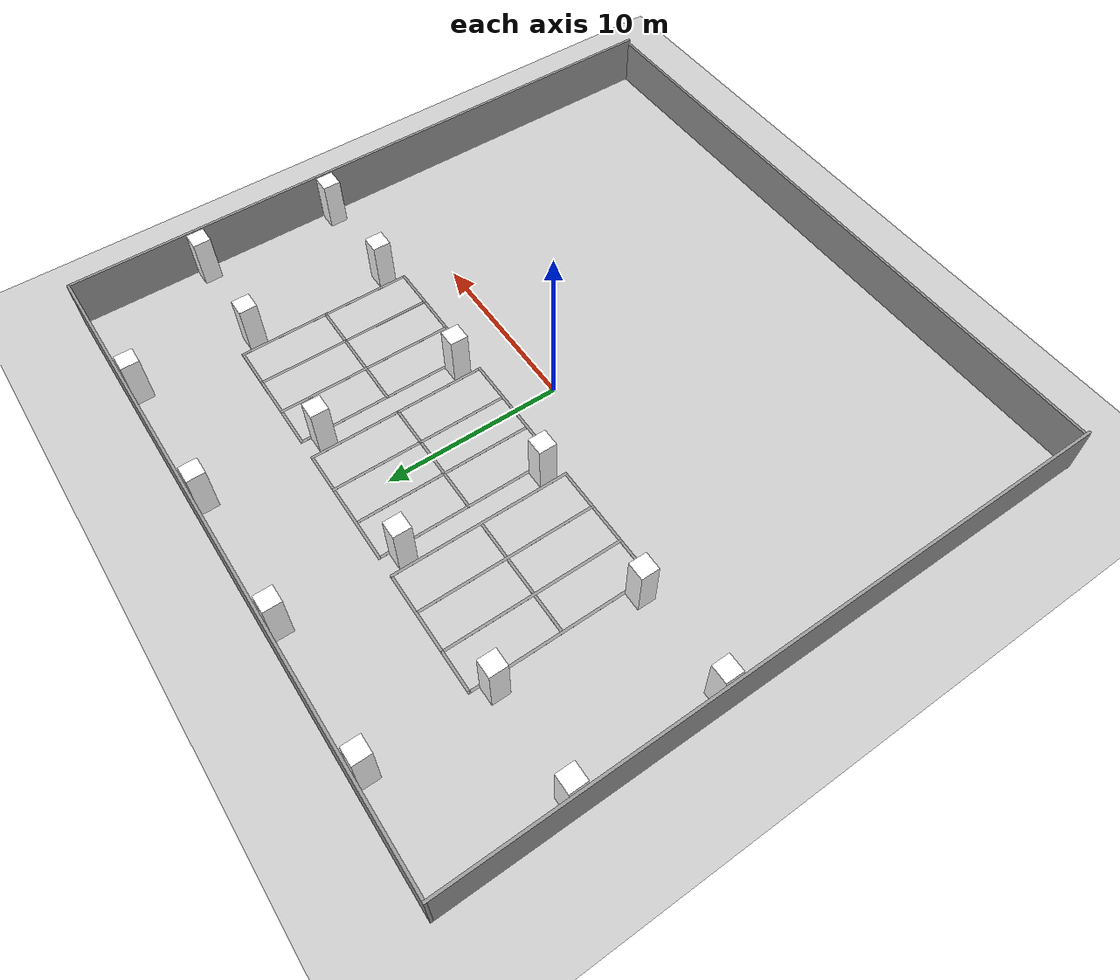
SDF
<sdf version="1.5">
 <world name="default">
  <model name="ground_plane">
   <static>true</static>
   <link name="ground_link">
    <collision name="ground_collision">
     <geometry><plane><normal>0 0 1</normal><size>100 100</size></plane></geometry>
     <surface><friction><ode><mu>100</mu><mu2>50</mu2></ode></friction></surface>
    </collision>
    <visual name="visual">
     <cast_shadows>false</cast_shadows>
     <geometry><plane><normal>0 0 1</normal><size>100 100</size></plane></geometry>
     <material>
      <script><uri>file://media/materials/scripts/gazebo.material</uri><name>Gazebo/Grey</name></script>
     </material>
    </visual>
   </link>
  </model>
  <model name="column1">
   <pose>12.075 11.45 1.5 0 -0 0</pose>
   <link name="link">
    <collision name="collision"><geometry><box><size>1 1 3</size></box></geometry></collision>
    <visual name="visual">
     <geometry><box><size>1 1 3</size></box></geometry>
     <material>
      <script>
       <uri>model://materials/scripts</uri>
       <uri>model://materials/textures</uri>
       <name>column/parking</name>
      </script>
      <ambient>1 1 1 1</ambient>
      <diffuse>1 1 1 1</diffuse>
      <specular>0 0 0 1</specular>
      <emissive>1 1 1 0</emissive>
      <shader type="vertex"><normal_map>__default__</normal_map></shader>
     </material>
    </visual>
   </link>
   <static>1</static>
  </model>
  <model name="column2">
   <pose>4.025 11.45 1.5 0 -0 0</pose>
   <link name="link">
    <collision name="collision"><geometry><box><size>1 1 3</size></box></geometry></collision>
    <visual name="visual">
     <geometry><box><size>1 1 3</size></box></geometry>
     <material>
      <script>
       <uri>model://materials/scripts</uri>
       <uri>model://materials/textures</uri>
       <name>column/parking</name>
      </script>
      <ambient>1 1 1 1</ambient>
      <diffuse>1 1 1 1</diffuse>
      <specular>0 0 0 1</specular>
      <emissive>1 1 1 0</emissive>
      <shader type="vertex"><normal_map>__default__</normal_map></shader>
     </material>
    </visual>
   </link>
   <static>1</static>
  </model>
  <model name="column3">
   <pose>-4.025 11.45 1.5 0 -0 0</pose>
   <link name="link">
    <collision name="collision"><geometry><box><size>1 1 3</size></box></geometry></collision>
    <visual name="visual">
     <geometry><box><size>1 1 3</size></box></geometry>
     <material>
      <script>
       <uri>model://materials/scripts</uri>
       <uri>model://materials/textures</uri>
       <name>column/parking</name>
      </script>
      <ambient>1 1 1 1</ambient>
      <diffuse>1 1 1 1</diffuse>
      <specular>0 0 0 1</specular>
      <emissive>1 1 1 0</emissive>
      <shader type="vertex"><normal_map>__default__</normal_map></shader>
     </material>
    </visual>
   </link>
   <static>1</static>
  </model>
  <model name="column4">
   <pose>-12.075 11.45 1.5 0 -0 0</pose>
   <link name="link">
    <collision name="collision"><geometry><box><size>1 1 3</size></box></geometry></collision>
    <visual name="visual">
     <geometry><box><size>1 1 3</size></box></geometry>
     <material>
      <script>
       <uri>model://materials/scripts</uri>
       <uri>model://materials/textures</uri>
       <name>column/parking</name>
      </script>
      <ambient>1 1 1 1</ambient>
      <diffuse>1 1 1 1</diffuse>
      <specular>0 0 0 1</specular>
      <emissive>1 1 1 0</emissive>
      <shader type="vertex"><normal_map>__default__</normal_map></shader>
     </material>
    </visual>
   </link>
   <static>1</static>
  </model>
  <model name="column5">
   <pose>12.075 3.45 1.5 0 -0 0</pose>
   <link name="link">
    <collision name="collision"><geometry><box><size>1 1 3</size></box></geometry></collision>
    <visual name="visual">
     <geometry><box><size>1 1 3</size></box></geometry>
     <material>
      <script>
       <uri>model://materials/scripts</uri>
       <uri>model://materials/textures</uri>
       <name>column/parking</name>
      </script>
      <ambient>1 1 1 1</ambient>
      <diffuse>1 1 1 1</diffuse>
      <specular>0 0 0 1</specular>
      <emissive>1 1 1 0</emissive>
      <shader type="vertex"><normal_map>__default__</normal_map></shader>
     </material>
    </visual>
   </link>
   <static>1</static>
  </model>
  <model name="column6">
   <pose>4.025 3.45 1.5 0 -0 0</pose>
   <link name="link">
    <collision name="collision"><geometry><box><size>1 1 3</size></box></geometry></collision>
    <visual name="visual">
     <geometry><box><size>1 1 3</size></box></geometry>
     <material>
      <script>
       <uri>model://materials/scripts</uri>
       <uri>model://materials/textures</uri>
       <name>column/parking</name>
      </script>
      <ambient>1 1 1 1</ambient>
      <diffuse>1 1 1 1</diffuse>
      <specular>0 0 0 1</specular>
      <emissive>1 1 1 0</emissive>
      <shader type="vertex"><normal_map>__default__</normal_map></shader>
     </material>
    </visual>
   </link>
   <static>1</static>
  </model>
  <model name="column7">
   <pose>-4.025 3.45 1.5 0 -0 0</pose>
   <link name="link">
    <collision name="collision"><geometry><box><size>1 1 3</size></box></geometry></collision>
    <visual name="visual">
     <geometry><box><size>1 1 3</size></box></geometry>
     <material>
      <script>
       <uri>model://materials/scripts</uri>
       <uri>model://materials/textures</uri>
       <name>column/parking</name>
      </script>
      <ambient>1 1 1 1</ambient>
      <diffuse>1 1 1 1</diffuse>
      <specular>0 0 0 1</specular>
      <emissive>1 1 1 0</emissive>
      <shader type="vertex"><normal_map>__default__</normal_map></shader>
     </material>
    </visual>
   </link>
   <static>1</static>
  </model>
  <model name="column8">
   <pose>-12.075 3.45 1.5 0 -0 0</pose>
   <link name="link">
    <collision name="collision"><geometry><box><size>1 1 3</size></box></geometry></collision>
    <visual name="visual">
     <geometry><box><size>1 1 3</size></box></geometry>
     <material>
      <script>
       <uri>model://materials/scripts</uri>
       <uri>model://materials/textures</uri>
       <name>column/parking</name>
      </script>
      <ambient>1 1 1 1</ambient>
      <diffuse>1 1 1 1</diffuse>
      <specular>0 0 0 1</specular>
      <emissive>1 1 1 0</emissive>
      <shader type="vertex"><normal_map>__default__</normal_map></shader>
     </material>
    </visual>
   </link>
   <static>1</static>
  </model>
  <model name="column_s1">
   <pose>17.875 3.45 1.5 0 -0 0</pose>
   <link name="link">
    <collision name="collision"><geometry><box><size>1 1 3</size></box></geometry></collision>
    <visual name="visual">
     <geometry><box><size>1 1 3</size></box></geometry>
     <material>
      <script>
       <uri>model://materials/scripts</uri>
       <uri>model://materials/textures</uri>
       <name>column/parking</name>
      </script>
      <ambient>1 1 1 1</ambient>
      <diffuse>1 1 1 1</diffuse>
      <specular>0 0 0 1</specular>
      <emissive>1 1 1 0</emissive>
      <shader type="vertex"><normal_map>__default__</normal_map></shader>
     </material>
    </visual>
   </link>
   <static>1</static>
  </model>
  <model name="column_s2">
   <pose>17.875 11.45 1.5 0 -0 0</pose>
   <link name="link">
    <collision name="collision"><geometry><box><size>1 1 3</size></box></geometry></collision>
    <visual name="visual">
     <geometry><box><size>1 1 3</size></box></geometry>
     <material>
      <script>
       <uri>model://materials/scripts</uri>
       <uri>model://materials/textures</uri>
       <name>column/parking</name>
      </script>
      <ambient>1 1 1 1</ambient>
      <diffuse>1 1 1 1</diffuse>
      <specular>0 0 0 1</specular>
      <emissive>1 1 1 0</emissive>
      <shader type="vertex"><normal_map>__default__</normal_map></shader>
     </material>
    </visual>
   </link>
   <static>1</static>
  </model>
  <model name="column_s3">
   <pose>12.075 17.95 1.5 0 -0 0</pose>
   <link name="link">
    <collision name="collision"><geometry><box><size>1 1 3</size></box></geometry></collision>
    <visual name="visual">
     <geometry><box><size>1 1 3</size></box></geometry>
     <material>
      <script>
       <uri>model://materials/scripts</uri>
       <uri>model://materials/textures</uri>
       <name>column/parking</name>
      </script>
      <ambient>1 1 1 1</ambient>
      <diffuse>1 1 1 1</diffuse>
      <specular>0 0 0 1</specular>
      <emissive>1 1 1 0</emissive>
      <shader type="vertex"><normal_map>__default__</normal_map></shader>
     </material>
    </visual>
   </link>
   <static>1</static>
  </model>
  <model name="column_s4">
   <pose>4.025 17.95 1.5 0 -0 0</pose>
   <link name="link">
    <collision name="collision"><geometry><box><size>1 1 3</size></box></geometry></collision>
    <visual name="visual">
     <geometry><box><size>1 1 3</size></box></geometry>
     <material>
      <script>
       <uri>model://materials/scripts</uri>
       <uri>model://materials/textures</uri>
       <name>column/parking</name>
      </script>
      <ambient>1 1 1 1</ambient>
      <diffuse>1 1 1 1</diffuse>
      <specular>0 0 0 1</specular>
      <emissive>1 1 1 0</emissive>
      <shader type="vertex"><normal_map>__default__</normal_map></shader>
     </material>
    </visual>
   </link>
   <static>1</static>
  </model>
  <model name="column_s5">
   <pose>-4.025 17.95 1.5 0 -0 0</pose>
   <link name="link">
    <collision name="collision"><geometry><box><size>1 1 3</size></box></geometry></collision>
    <visual name="visual">
     <geometry><box><size>1 1 3</size></box></geometry>
     <material>
      <script>
       <uri>model://materials/scripts</uri>
       <uri>model://materials/textures</uri>
       <name>column/parking</name>
      </script>
      <ambient>1 1 1 1</ambient>
      <diffuse>1 1 1 1</diffuse>
      <specular>0 0 0 1</specular>
      <emissive>1 1 1 0</emissive>
      <shader type="vertex"><normal_map>__default__</normal_map></shader>
     </material>
    </visual>
   </link>
   <static>1</static>
  </model>
  <model name="column_s6">
   <pose>-12.075 17.95 1.5 0 -0 0</pose>
   <link name="link">
    <collision name="collision"><geometry><box><size>1 1 3</size></box></geometry></collision>
    <visual name="visual">
     <geometry><box><size>1 1 3</size></box></geometry>
     <material>
      <script>
       <uri>model://materials/scripts</uri>
       <uri>model://materials/textures</uri>
       <name>column/parking</name>
      </script>
      <ambient>1 1 1 1</ambient>
      <diffuse>1 1 1 1</diffuse>
      <specular>0 0 0 1</specular>
      <emissive>1 1 1 0</emissive>
      <shader type="vertex"><normal_map>__default__</normal_map></shader>
     </material>
    </visual>
   </link>
   <static>1</static>
  </model>
  <model name="column_s7">
   <pose>-17.875 11.45 1.5 0 -0 0</pose>
   <link name="link">
    <collision name="collision"><geometry><box><size>1 1 3</size></box></geometry></collision>
    <visual name="visual">
     <geometry><box><size>1 1 3</size></box></geometry>
     <material>
      <script>
       <uri>model://materials/scripts</uri>
       <uri>model://materials/textures</uri>
       <name>column/parking</name>
      </script>
      <ambient>1 1 1 1</ambient>
      <diffuse>1 1 1 1</diffuse>
      <specular>0 0 0 1</specular>
      <emissive>1 1 1 0</emissive>
      <shader type="vertex"><normal_map>__default__</normal_map></shader>
     </material>
    </visual>
   </link>
   <static>1</static>
  </model>
  <model name="column_s8">
   <pose>-17.875 3.45 1.5 0 -0 0</pose>
   <link name="link">
    <collision name="collision"><geometry><box><size>1 1 3</size></box></geometry></collision>
    <visual name="visual">
     <geometry><box><size>1 1 3</size></box></geometry>
     <material>
      <script>
       <uri>model://materials/scripts</uri>
       <uri>model://materials/textures</uri>
       <name>column/parking</name>
      </script>
      <ambient>1 1 1 1</ambient>
      <diffuse>1 1 1 1</diffuse>
      <specular>0 0 0 1</specular>
      <emissive>1 1 1 0</emissive>
      <shader type="vertex"><normal_map>__default__</normal_map></shader>
     </material>
    </visual>
   </link>
   <static>1</static>
  </model>
  <model name="wall_outer">
   <link name="Wall_0">
    <collision name="Wall_0_Collision">
     <geometry><box><size>37.35 0.15 3</size></box></geometry>
     <pose>0 0 1.5 0 -0 0</pose>
    </collision>
    <visual name="Wall_0_Visual">
     <pose>0 0 1.5 0 -0 0</pose>
     <geometry><box><size>37.35 0.15 3</size></box></geometry>
     <material>
      <script><uri>file://media/materials/scripts/gazebo.material</uri><name>Gazebo/Grey</name></script>
      <ambient>1 1 1 1</ambient>
     </material>
     <meta><layer>0</layer></meta>
    </visual>
    <pose>18.525 0 0 0 -0 1.5708</pose>
   </link>
   <link name="Wall_1">
    <collision name="Wall_1_Collision">
     <geometry><box><size>37.2 0.15 3</size></box></geometry>
     <pose>0 0 1.5 0 -0 0</pose>
    </collision>
    <visual name="Wall_1_Visual">
     <pose>0 0 1.5 0 -0 0</pose>
     <geometry><box><size>37.2 0.15 3</size></box></geometry>
     <material>
      <script><uri>file://media/materials/scripts/gazebo.material</uri><name>Gazebo/Grey</name></script>
      <ambient>1 1 1 1</ambient>
     </material>
     <meta><layer>0</layer></meta>
    </visual>
    <pose>0 18.6 0 0 -0 3.14159</pose>
   </link>
   <link name="Wall_2">
    <collision name="Wall_2_Collision">
     <geometry><box><size>37.35 0.15 3</size></box></geometry>
     <pose>0 0 1.5 0 -0 0</pose>
    </collision>
    <visual name="Wall_2_Visual">
     <pose>0 0 1.5 0 -0 0</pose>
     <geometry><box><size>37.35 0.15 3</size></box></geometry>
     <material>
      <script><uri>file://media/materials/scripts/gazebo.material</uri><name>Gazebo/Grey</name></script>
      <ambient>1 1 1 1</ambient>
     </material>
     <meta><layer>0</layer></meta>
    </visual>
    <pose>-18.525 0 0 0 -0 -1.5708</pose>
   </link>
   <link name="Wall_3">
    <collision name="Wall_3_Collision">
     <geometry><box><size>37.2 0.15 3</size></box></geometry>
     <pose>0 0 1.25 0 -0 0</pose>
    </collision>
    <visual name="Wall_3_Visual">
     <pose>0 0 1.25 0 -0 0</pose>
     <geometry><box><size>37.2 0.15 3</size></box></geometry>
     <material>
      <script><uri>file://media/materials/scripts/gazebo.material</uri><name>Gazebo/Grey</name></script>
      <ambient>1 1 1 1</ambient>
     </material>
     <meta><layer>0</layer></meta>
    </visual>
    <pose>0 -18.6 0 0 -0 0</pose>
   </link>
   <static>1</static>
  </model>
  <model name="parking_line1">
   <pose>5.7875 6.2625 0 0 -0 0</pose>
   <link name="Wall_27">
    <collision name="Wall_27_Collision">
     <geometry><box><size>7.05 0.15 0.005</size></box></geometry>
     <pose>0 0 0.0025 0 -0 0</pose>
    </collision>
    <visual name="Wall_27_Visual">
     <pose>0 0 0.0025 0 -0 0</pose>
     <geometry><box><size>7.05 0.15 0.005</size></box></geometry>
     <material>
      <script><uri>file://media/materials/scripts/gazebo.material</uri><name>Gazebo/Grey</name></script>
      <ambient>1 1 1 1</ambient>
     </material>
     <meta><layer>0</layer></meta>
    </visual>
    <pose>2.2625 -3.8125 0 0 -0 0</pose>
   </link>
   <link name="Wall_28">
    <collision name="Wall_28_Collision">
     <geometry><box><size>10.15 0.15 0.005</size></box></geometry>
     <pose>0 0 0.0025 0 -0 0</pose>
    </collision>
    <visual name="Wall_28_Visual">
     <pose>0 0 0.0025 0 -0 0</pose>
     <geometry><box><size>10.15 0.15 0.005</size></box></geometry>
     <material>
      <script><uri>file://media/materials/scripts/gazebo.material</uri><name>Gazebo/Grey</name></script>
      <ambient>1 1 1 1</ambient>
     </material>
     <meta><layer>0</layer></meta>
    </visual>
    <pose>5.7125 1.1875 0 0 -0 1.5708</pose>
   </link>
   <link name="Wall_29">
    <collision name="Wall_29_Collision">
     <geometry><box><size>7.05 0.15 0.005</size></box></geometry>
     <pose>0 0 0.0025 0 -0 0</pose>
    </collision>
    <visual name="Wall_29_Visual">
     <pose>0 0 0.0025 0 -0 0</pose>
     <geometry><box><size>7.05 0.15 0.005</size></box></geometry>
     <material>
      <script><uri>file://media/materials/scripts/gazebo.material</uri><name>Gazebo/Grey</name></script>
      <ambient>1 1 1 1</ambient>
     </material>
     <meta><layer>0</layer></meta>
    </visual>
    <pose>2.2625 6.1875 0 0 -0 3.14159</pose>
   </link>
   <link name="Wall_30">
    <collision name="Wall_30_Collision">
     <geometry><box><size>10.15 0.15 0.005</size></box></geometry>
     <pose>0 0 0.0025 0 -0 0</pose>
    </collision>
    <visual name="Wall_30_Visual">
     <pose>0 0 0.0025 0 -0 0</pose>
     <geometry><box><size>10.15 0.15 0.005</size></box></geometry>
     <material>
      <script><uri>file://media/materials/scripts/gazebo.material</uri><name>Gazebo/Grey</name></script>
      <ambient>1 1 1 1</ambient>
     </material>
     <meta><layer>0</layer></meta>
    </visual>
    <pose>-1.1875 1.1875 0 0 -0 -1.5708</pose>
   </link>
   <link name="Wall_32">
    <collision name="Wall_32_Collision">
     <geometry><box><size>7.05 0.15 0.005</size></box></geometry>
     <pose>0 0 0.0025 0 -0 0</pose>
    </collision>
    <visual name="Wall_32_Visual">
     <pose>0 0 0.0025 0 -0 0</pose>
     <geometry><box><size>7.05 0.15 0.005</size></box></geometry>
     <material>
      <script><uri>file://media/materials/scripts/gazebo.material</uri><name>Gazebo/Grey</name></script>
      <ambient>1 1 1 1</ambient>
     </material>
     <meta><layer>0</layer></meta>
    </visual>
    <pose>2.2625 1.1875 0 0 -0 0</pose>
   </link>
   <link name="Wall_34">
    <collision name="Wall_34_Collision">
     <geometry><box><size>10.15 0.15 0.005</size></box></geometry>
     <pose>0 0 0.0025 0 -0 0</pose>
    </collision>
    <visual name="Wall_34_Visual">
     <pose>0 0 0.0025 0 -0 0</pose>
     <geometry><box><size>10.15 0.15 0.005</size></box></geometry>
     <material>
      <script><uri>file://media/materials/scripts/gazebo.material</uri><name>Gazebo/Grey</name></script>
      <ambient>1 1 1 1</ambient>
     </material>
     <meta><layer>0</layer></meta>
    </visual>
    <pose>3.4125 1.1875 0 0 -0 1.5708</pose>
   </link>
   <link name="Wall_36">
    <collision name="Wall_36_Collision">
     <geometry><box><size>10.15 0.15 0.005</size></box></geometry>
     <pose>0 0 0.0025 0 -0 0</pose>
    </collision>
    <visual name="Wall_36_Visual">
     <pose>0 0 0.0025 0 -0 0</pose>
     <geometry><box><size>10.15 0.15 0.005</size></box></geometry>
     <material>
      <script><uri>file://media/materials/scripts/gazebo.material</uri><name>Gazebo/Grey</name></script>
      <ambient>1 1 1 1</ambient>
     </material>
     <meta><layer>0</layer></meta>
    </visual>
    <pose>1.1125 1.1875 0 0 -0 1.5708</pose>
   </link>
   <static>1</static>
  </model>
  <model name="parking_line2">
   <pose>-7.5e-05 6.26258 0 0 -0 0</pose>
   <link name="Wall_11">
    <collision name="Wall_11_Collision">
     <geometry><box><size>10.15 0.15 0.005</size></box></geometry>
     <pose>0 0 0.0025 0 -0 0</pose>
    </collision>
    <visual name="Wall_11_Visual">
     <pose>0 0 0.0025 0 -0 0</pose>
     <geometry><box><size>10.15 0.15 0.005</size></box></geometry>
     <material>
      <script><uri>file://media/materials/scripts/gazebo.material</uri><name>Gazebo/Grey</name></script>
      <ambient>1 1 1 1</ambient>
     </material>
     <meta><layer>0</layer></meta>
    </visual>
    <pose>1.15007 1.18742 0 0 -0 1.5708</pose>
   </link>
   <link name="Wall_2">
    <collision name="Wall_2_Collision">
     <geometry><box><size>7.05 0.15 0.005</size></box></geometry>
     <pose>0 0 0.0025 0 -0 0</pose>
    </collision>
    <visual name="Wall_2_Visual">
     <pose>0 0 0.0025 0 -0 0</pose>
     <geometry><box><size>7.05 0.15 0.005</size></box></geometry>
     <material>
      <script><uri>file://media/materials/scripts/gazebo.material</uri><name>Gazebo/Grey</name></script>
      <ambient>1 1 1 1</ambient>
     </material>
     <meta><layer>0</layer></meta>
    </visual>
    <pose>7.5e-05 -3.81257 0 0 -0 0</pose>
   </link>
   <link name="Wall_3">
    <collision name="Wall_3_Collision">
     <geometry><box><size>10.15 0.15 0.005</size></box></geometry>
     <pose>0 0 0.0025 0 -0 0</pose>
    </collision>
    <visual name="Wall_3_Visual">
     <pose>0 0 0.0025 0 -0 0</pose>
     <geometry><box><size>10.15 0.15 0.005</size></box></geometry>
     <material>
      <script><uri>file://media/materials/scripts/gazebo.material</uri><name>Gazebo/Grey</name></script>
      <ambient>1 1 1 1</ambient>
     </material>
     <meta><layer>0</layer></meta>
    </visual>
    <pose>3.45008 1.18742 0 0 -0 1.5708</pose>
   </link>
   <link name="Wall_4">
    <collision name="Wall_4_Collision">
     <geometry><box><size>7.03 0.15 0.005</size></box></geometry>
     <pose>0 0 0.0025 0 -0 0</pose>
    </collision>
    <visual name="Wall_4_Visual">
     <pose>0 0 0.0025 0 -0 0</pose>
     <geometry><box><size>7.03 0.15 0.005</size></box></geometry>
     <material>
      <script><uri>file://media/materials/scripts/gazebo.material</uri><name>Gazebo/Grey</name></script>
      <ambient>1 1 1 1</ambient>
     </material>
     <meta><layer>0</layer></meta>
    </visual>
    <pose>0.010075 6.18743 0 0 -0 3.14159</pose>
   </link>
   <link name="Wall_5">
    <collision name="Wall_5_Collision">
     <geometry><box><size>10.15 0.15 0.005</size></box></geometry>
     <pose>0 0 0.0025 0 -0 0</pose>
    </collision>
    <visual name="Wall_5_Visual">
     <pose>0 0 0.0025 0 -0 0</pose>
     <geometry><box><size>10.15 0.15 0.005</size></box></geometry>
     <material>
      <script><uri>file://media/materials/scripts/gazebo.material</uri><name>Gazebo/Grey</name></script>
      <ambient>1 1 1 1</ambient>
     </material>
     <meta><layer>0</layer></meta>
    </visual>
    <pose>-3.45 1.18742 0 0 -0 -1.5708</pose>
   </link>
   <link name="Wall_7">
    <collision name="Wall_7_Collision">
     <geometry><box><size>7.05 0.15 0.005</size></box></geometry>
     <pose>0 0 0.0025 0 -0 0</pose>
    </collision>
    <visual name="Wall_7_Visual">
     <pose>0 0 0.0025 0 -0 0</pose>
     <geometry><box><size>7.05 0.15 0.005</size></box></geometry>
     <material>
      <script><uri>file://media/materials/scripts/gazebo.material</uri><name>Gazebo/Grey</name></script>
      <ambient>1 1 1 1</ambient>
     </material>
     <meta><layer>0</layer></meta>
    </visual>
    <pose>7.5e-05 1.18742 0 0 -0 0</pose>
   </link>
   <link name="Wall_9">
    <collision name="Wall_9_Collision">
     <geometry><box><size>10.15 0.15 0.005</size></box></geometry>
     <pose>0 0 0.0025 0 -0 0</pose>
    </collision>
    <visual name="Wall_9_Visual">
     <pose>0 0 0.0025 0 -0 0</pose>
     <geometry><box><size>10.15 0.15 0.005</size></box></geometry>
     <material>
      <script><uri>file://media/materials/scripts/gazebo.material</uri><name>Gazebo/Grey</name></script>
      <ambient>1 1 1 1</ambient>
     </material>
     <meta><layer>0</layer></meta>
    </visual>
    <pose>-1.14993 1.18742 0 0 -0 1.5708</pose>
   </link>
   <static>1</static>
  </model>
  <model name="parking_line3">
   <pose>-5.7875 6.2625 0 0 -0 0</pose>
   <link name="Wall_76">
    <collision name="Wall_76_Collision">
     <geometry><box><size>7.05 0.15 0.005</size></box></geometry>
     <pose>0 0 0.0025 0 -0 0</pose>
    </collision>
    <visual name="Wall_76_Visual">
     <pose>0 0 0.0025 0 -0 0</pose>
     <geometry><box><size>7.05 0.15 0.005</size></box></geometry>
     <material>
      <script><uri>file://media/materials/scripts/gazebo.material</uri><name>Gazebo/Grey</name></script>
      <ambient>1 1 1 1</ambient>
     </material>
     <meta><layer>0</layer></meta>
    </visual>
    <pose>-2.2625 -3.8125 0 0 -0 0</pose>
   </link>
   <link name="Wall_77">
    <collision name="Wall_77_Collision">
     <geometry><box><size>10.15 0.15 0.005</size></box></geometry>
     <pose>0 0 0.0025 0 -0 0</pose>
    </collision>
    <visual name="Wall_77_Visual">
     <pose>0 0 0.0025 0 -0 0</pose>
     <geometry><box><size>10.15 0.15 0.005</size></box></geometry>
     <material>
      <script><uri>file://media/materials/scripts/gazebo.material</uri><name>Gazebo/Grey</name></script>
      <ambient>1 1 1 1</ambient>
     </material>
     <meta><layer>0</layer></meta>
    </visual>
    <pose>1.1875 1.1875 0 0 -0 1.5708</pose>
   </link>
   <link name="Wall_78">
    <collision name="Wall_78_Collision">
     <geometry><box><size>7.05 0.15 0.005</size></box></geometry>
     <pose>0 0 0.0025 0 -0 0</pose>
    </collision>
    <visual name="Wall_78_Visual">
     <pose>0 0 0.0025 0 -0 0</pose>
     <geometry><box><size>7.05 0.15 0.005</size></box></geometry>
     <material>
      <script><uri>file://media/materials/scripts/gazebo.material</uri><name>Gazebo/Grey</name></script>
      <ambient>1 1 1 1</ambient>
     </material>
     <meta><layer>0</layer></meta>
    </visual>
    <pose>-2.2625 6.1875 0 0 -0 3.14159</pose>
   </link>
   <link name="Wall_79">
    <collision name="Wall_79_Collision">
     <geometry><box><size>10.15 0.15 0.005</size></box></geometry>
     <pose>0 0 0.0025 0 -0 0</pose>
    </collision>
    <visual name="Wall_79_Visual">
     <pose>0 0 0.0025 0 -0 0</pose>
     <geometry><box><size>10.15 0.15 0.005</size></box></geometry>
     <material>
      <script><uri>file://media/materials/scripts/gazebo.material</uri><name>Gazebo/Grey</name></script>
      <ambient>1 1 1 1</ambient>
     </material>
     <meta><layer>0</layer></meta>
    </visual>
    <pose>-5.7125 1.1875 0 0 -0 -1.5708</pose>
   </link>
   <link name="Wall_81">
    <collision name="Wall_81_Collision">
     <geometry><box><size>7.05 0.15 0.005</size></box></geometry>
     <pose>0 0 0.0025 0 -0 0</pose>
    </collision>
    <visual name="Wall_81_Visual">
     <pose>0 0 0.0025 0 -0 0</pose>
     <geometry><box><size>7.05 0.15 0.005</size></box></geometry>
     <material>
      <script><uri>file://media/materials/scripts/gazebo.material</uri><name>Gazebo/Grey</name></script>
      <ambient>1 1 1 1</ambient>
     </material>
     <meta><layer>0</layer></meta>
    </visual>
    <pose>-2.2625 1.1875 0 0 -0 3.14159</pose>
   </link>
   <link name="Wall_83">
    <collision name="Wall_83_Collision">
     <geometry><box><size>10.15 0.15 0.005</size></box></geometry>
     <pose>0 0 0.0025 0 -0 0</pose>
    </collision>
    <visual name="Wall_83_Visual">
     <pose>0 0 0.0025 0 -0 0</pose>
     <geometry><box><size>10.15 0.15 0.005</size></box></geometry>
     <material>
      <script><uri>file://media/materials/scripts/gazebo.material</uri><name>Gazebo/Grey</name></script>
      <ambient>1 1 1 1</ambient>
     </material>
     <meta><layer>0</layer></meta>
    </visual>
    <pose>-3.4125 1.1875 0 0 -0 1.5708</pose>
   </link>
   <link name="Wall_85">
    <collision name="Wall_85_Collision">
     <geometry><box><size>10.15 0.15 0.005</size></box></geometry>
     <pose>0 0 0.0025 0 -0 0</pose>
    </collision>
    <visual name="Wall_85_Visual">
     <pose>0 0 0.0025 0 -0 0</pose>
     <geometry><box><size>10.15 0.15 0.005</size></box></geometry>
     <material>
      <script><uri>file://media/materials/scripts/gazebo.material</uri><name>Gazebo/Grey</name></script>
      <ambient>1 1 1 1</ambient>
     </material>
     <meta><layer>0</layer></meta>
    </visual>
    <pose>-1.1125 1.1875 0 0 -0 1.5708</pose>
   </link>
   <static>1</static>
  </model>
 </world>
</sdf>
